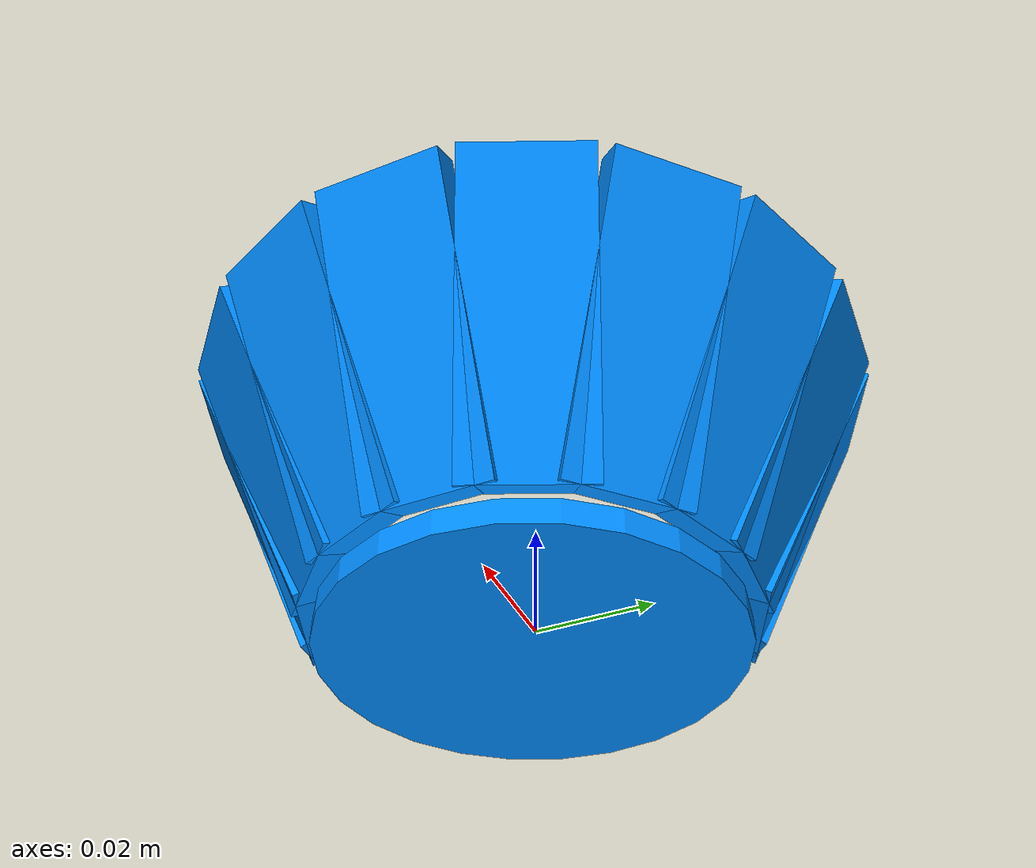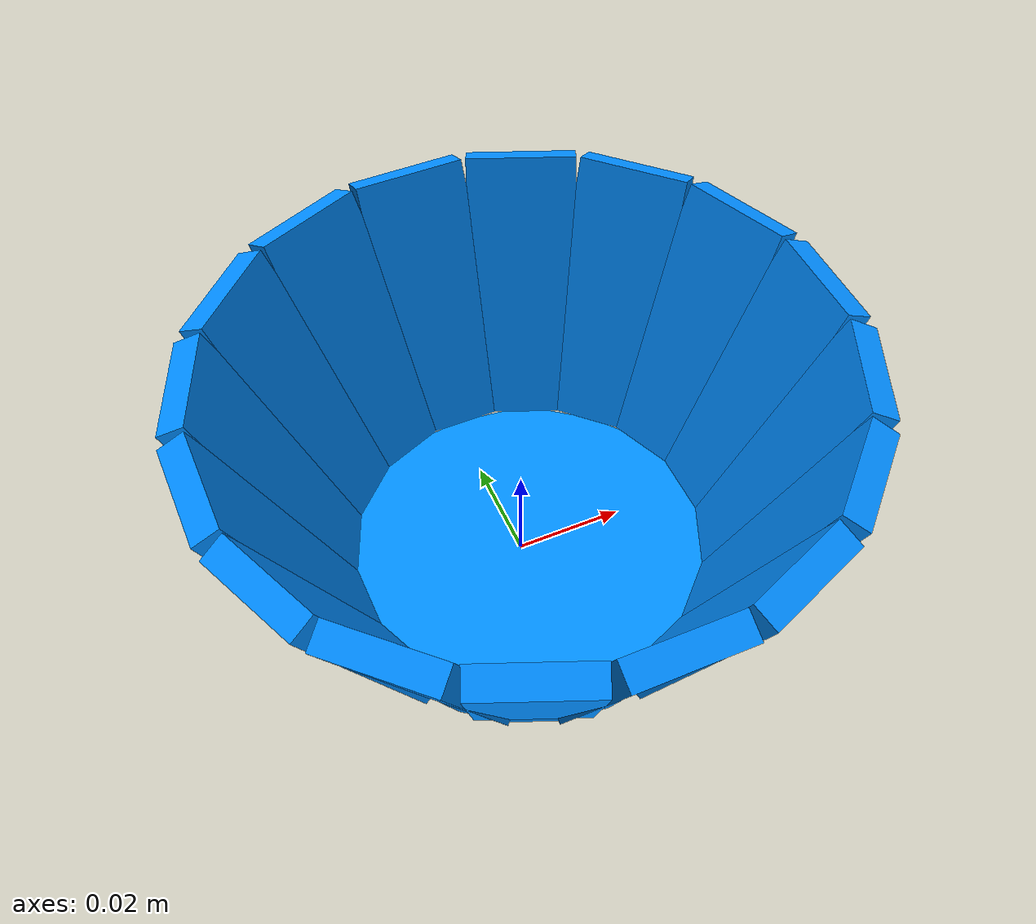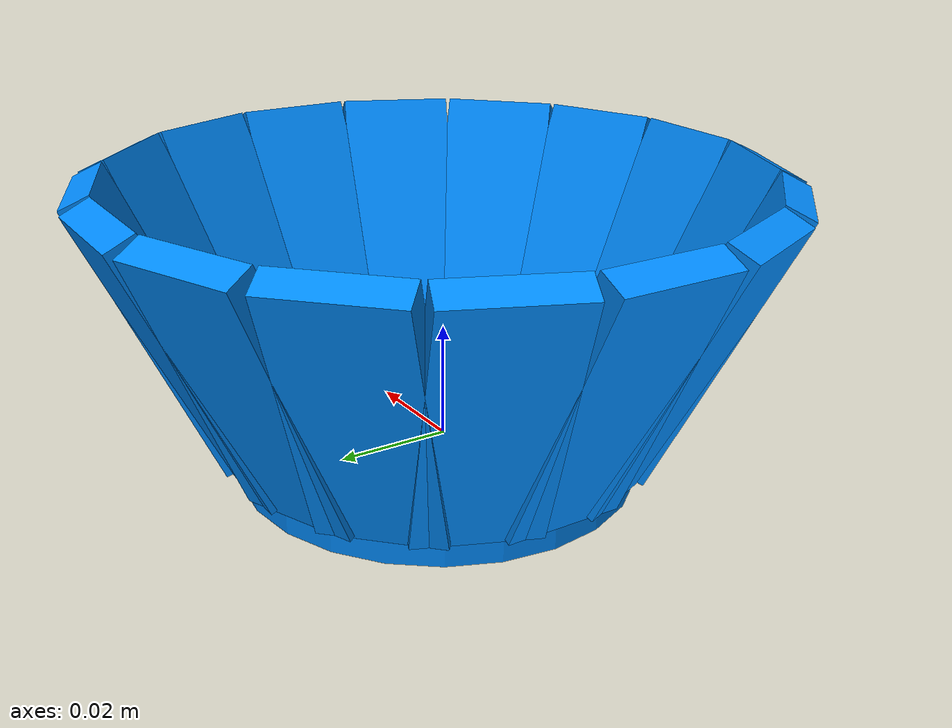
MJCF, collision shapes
<?xml version='1.0' encoding='utf-8'?>
<mujoco model="bowl">
  <compiler angle="radian" autolimits="true" />
  <option integrator="implicitfast" timestep="0.001" gravity="0 0 -9.81" cone="elliptic" impratio="10" solver="Newton" iterations="100" ls_iterations="20">
    <flag contact="enable" />
  </option>
  <default>
    <geom condim="3" solref="0.008 1" solimp="0.96 0.995 0.001 0.5 2" margin="0" contype="1" conaffinity="7" />
    <joint damping="2.5" armature="0.002" />
  </default>
  <asset>
    <material name="mat_v2_OmniPBR" rgba="0.135657 0.293414 0.351351 1" />
    <material name="collision_object_mat" rgba="0 0.55 1.0 0.18" />
    <mesh name="dynamic_bowl2_mesh" file="meshes/bowl2_exact.obj" inertia="shell" />
  </asset>
  <worldbody>
    <body name="dynamic_bowl2" pos="0 0 0" quat="1 0 0 0">
      <freejoint name="dynamic_bowl2_freejoint" />
      <inertial pos="0 0 0" mass="0.28" diaginertia="0.00028 0.00028 0.00036" />
      <body name="dynamic_bowl2_usd_internal" pos="0.00175075531006 7.43025124097e-05 -0.00673707613806" quat="0.999987763364 0.000318679323933 -0.00489398985442 -0.000648405647195">
        <geom name="visual_dynamic_bowl2" type="mesh" mesh="dynamic_bowl2_mesh" material="mat_v2_OmniPBR" group="1" contype="0" conaffinity="0" density="0" />
        <geom name="collision_bowl_fast_bottom_disk" type="cylinder" pos="2.421438694e-08 0 0.0029516933132" size="0.035 0.0022" condim="3" friction="1.35 0.02 0.002" group="3" contype="1" conaffinity="7" density="0" material="collision_object_mat" rgba="0 0.55 1 0.30" solref="0.009 1" solimp="0.90 0.98 0.001" />
        <geom name="collision_bowl_fast_wall_00" type="box" pos="0.0457500242144 0 0.0302016933132" quat="0.974720281 0 0.223428678 0" size="0.0027 0.0104202701 0.025828763" condim="3" friction="1.35 0.02 0.002" group="3" contype="1" conaffinity="7" density="0" material="collision_object_mat" rgba="0 0.55 1 0.30" solref="0.009 1" solimp="0.90 0.98 0.001" />
        <geom name="collision_bowl_fast_wall_01" type="box" pos="0.0422675128144 0.017507767 0.0302016933132" quat="0.955991304 -0.0435887728 0.219135559 0.190158493" size="0.0027 0.0104202701 0.025828763" condim="3" friction="1.35 0.02 0.002" group="3" contype="1" conaffinity="7" density="0" material="collision_object_mat" rgba="0 0.55 1 0.30" solref="0.009 1" solimp="0.90 0.98 0.001" />
        <geom name="collision_bowl_fast_wall_02" type="box" pos="0.0323501594144 0.0323501352 0.0302016933132" quat="0.900524117 -0.0855024535 0.206421183 0.373009303" size="0.0027 0.0104202701 0.025828763" condim="3" friction="1.35 0.02 0.002" group="3" contype="1" conaffinity="7" density="0" material="collision_object_mat" rgba="0 0.55 1 0.30" solref="0.009 1" solimp="0.90 0.98 0.001" />
        <geom name="collision_bowl_fast_wall_03" type="box" pos="0.0175077912144 0.0422674886 0.0302016933132" quat="0.810450294 -0.124130323 0.185774157 0.541525574" size="0.0027 0.0104202701 0.025828763" condim="3" friction="1.35 0.02 0.002" group="3" contype="1" conaffinity="7" density="0" material="collision_object_mat" rgba="0 0.55 1 0.30" solref="0.009 1" solimp="0.90 0.98 0.001" />
        <geom name="collision_bowl_fast_wall_04" type="box" pos="2.42143869428e-08 0.04575 0.0302016933132" quat="0.68923132 -0.157987934 0.157987934 0.68923132" size="0.0027 0.0104202701 0.025828763" condim="3" friction="1.35 0.02 0.002" group="3" contype="1" conaffinity="7" density="0" material="collision_object_mat" rgba="0 0.55 1 0.30" solref="0.009 1" solimp="0.90 0.98 0.001" />
        <geom name="collision_bowl_fast_wall_05" type="box" pos="-0.0175077427856 0.0422674886 0.0302016933132" quat="0.541525574 -0.185774157 0.124130323 0.810450294" size="0.0027 0.0104202701 0.025828763" condim="3" friction="1.35 0.02 0.002" group="3" contype="1" conaffinity="7" density="0" material="collision_object_mat" rgba="0 0.55 1 0.30" solref="0.009 1" solimp="0.90 0.98 0.001" />
        <geom name="collision_bowl_fast_wall_06" type="box" pos="-0.0323501109856 0.0323501352 0.0302016933132" quat="0.373009303 -0.206421183 0.0855024535 0.900524117" size="0.0027 0.0104202701 0.025828763" condim="3" friction="1.35 0.02 0.002" group="3" contype="1" conaffinity="7" density="0" material="collision_object_mat" rgba="0 0.55 1 0.30" solref="0.009 1" solimp="0.90 0.98 0.001" />
        <geom name="collision_bowl_fast_wall_07" type="box" pos="-0.0422674643856 0.017507767 0.0302016933132" quat="0.190158493 -0.219135559 0.0435887728 0.955991304" size="0.0027 0.0104202701 0.025828763" condim="3" friction="1.35 0.02 0.002" group="3" contype="1" conaffinity="7" density="0" material="collision_object_mat" rgba="0 0.55 1 0.30" solref="0.009 1" solimp="0.90 0.98 0.001" />
        <geom name="collision_bowl_fast_wall_08" type="box" pos="-0.0457499757856 5.60275911e-18 0.0302016933132" quat="5.96844036e-17 -0.223428678 1.36810608e-17 0.974720281" size="0.0027 0.0104202701 0.025828763" condim="3" friction="1.35 0.02 0.002" group="3" contype="1" conaffinity="7" density="0" material="collision_object_mat" rgba="0 0.55 1 0.30" solref="0.009 1" solimp="0.90 0.98 0.001" />
        <geom name="collision_bowl_fast_wall_09" type="box" pos="-0.0422674643856 -0.017507767 0.0302016933132" quat="-0.190158493 -0.219135559 -0.0435887728 0.955991304" size="0.0027 0.0104202701 0.025828763" condim="3" friction="1.35 0.02 0.002" group="3" contype="1" conaffinity="7" density="0" material="collision_object_mat" rgba="0 0.55 1 0.30" solref="0.009 1" solimp="0.90 0.98 0.001" />
        <geom name="collision_bowl_fast_wall_10" type="box" pos="-0.0323501109856 -0.0323501352 0.0302016933132" quat="-0.373009303 -0.206421183 -0.0855024535 0.900524117" size="0.0027 0.0104202701 0.025828763" condim="3" friction="1.35 0.02 0.002" group="3" contype="1" conaffinity="7" density="0" material="collision_object_mat" rgba="0 0.55 1 0.30" solref="0.009 1" solimp="0.90 0.98 0.001" />
        <geom name="collision_bowl_fast_wall_11" type="box" pos="-0.0175077427856 -0.0422674886 0.0302016933132" quat="-0.541525574 -0.185774157 -0.124130323 0.810450294" size="0.0027 0.0104202701 0.025828763" condim="3" friction="1.35 0.02 0.002" group="3" contype="1" conaffinity="7" density="0" material="collision_object_mat" rgba="0 0.55 1 0.30" solref="0.009 1" solimp="0.90 0.98 0.001" />
        <geom name="collision_bowl_fast_wall_12" type="box" pos="2.42143869316e-08 -0.04575 0.0302016933132" quat="-0.68923132 -0.157987934 -0.157987934 0.68923132" size="0.0027 0.0104202701 0.025828763" condim="3" friction="1.35 0.02 0.002" group="3" contype="1" conaffinity="7" density="0" material="collision_object_mat" rgba="0 0.55 1 0.30" solref="0.009 1" solimp="0.90 0.98 0.001" />
        <geom name="collision_bowl_fast_wall_13" type="box" pos="0.0175077912144 -0.0422674886 0.0302016933132" quat="-0.810450294 -0.124130323 -0.185774157 0.541525574" size="0.0027 0.0104202701 0.025828763" condim="3" friction="1.35 0.02 0.002" group="3" contype="1" conaffinity="7" density="0" material="collision_object_mat" rgba="0 0.55 1 0.30" solref="0.009 1" solimp="0.90 0.98 0.001" />
        <geom name="collision_bowl_fast_wall_14" type="box" pos="0.0323501594144 -0.0323501352 0.0302016933132" quat="-0.900524117 -0.0855024535 -0.206421183 0.373009303" size="0.0027 0.0104202701 0.025828763" condim="3" friction="1.35 0.02 0.002" group="3" contype="1" conaffinity="7" density="0" material="collision_object_mat" rgba="0 0.55 1 0.30" solref="0.009 1" solimp="0.90 0.98 0.001" />
        <geom name="collision_bowl_fast_wall_15" type="box" pos="0.0422675128144 -0.017507767 0.0302016933132" quat="-0.955991304 -0.0435887728 -0.219135559 0.190158493" size="0.0027 0.0104202701 0.025828763" condim="3" friction="1.35 0.02 0.002" group="3" contype="1" conaffinity="7" density="0" material="collision_object_mat" rgba="0 0.55 1 0.30" solref="0.009 1" solimp="0.90 0.98 0.001" />
      </body>
    </body>
  </worldbody>
</mujoco>
